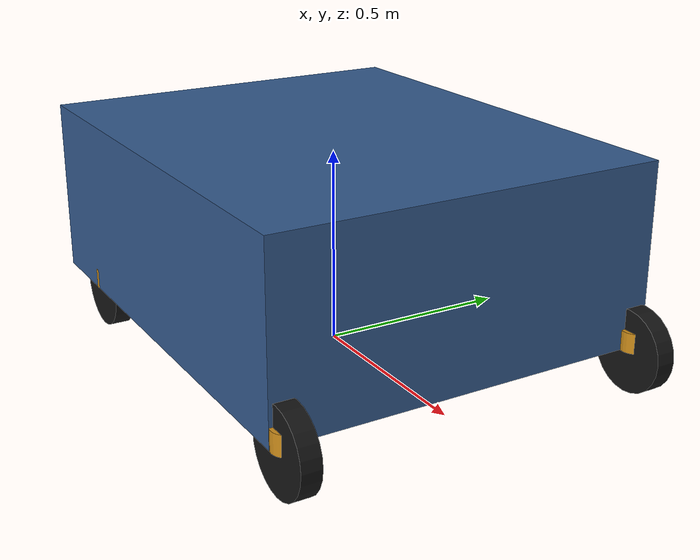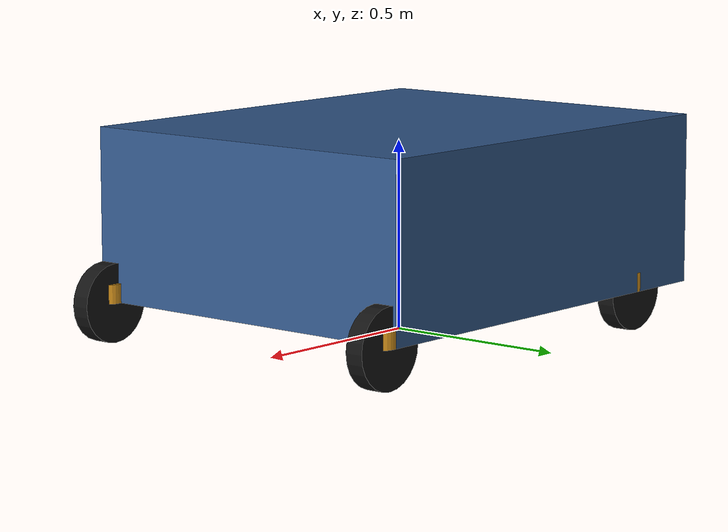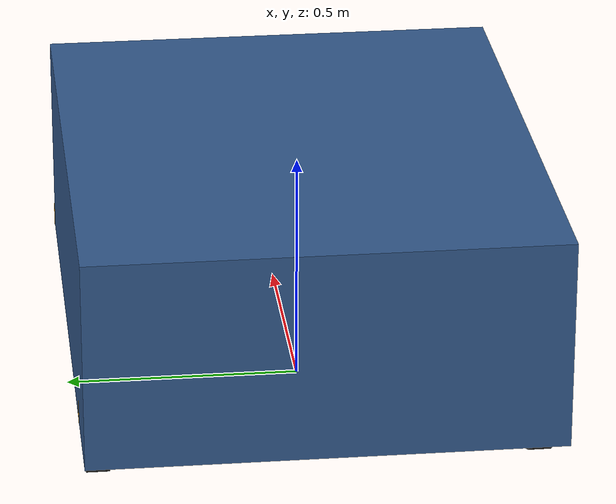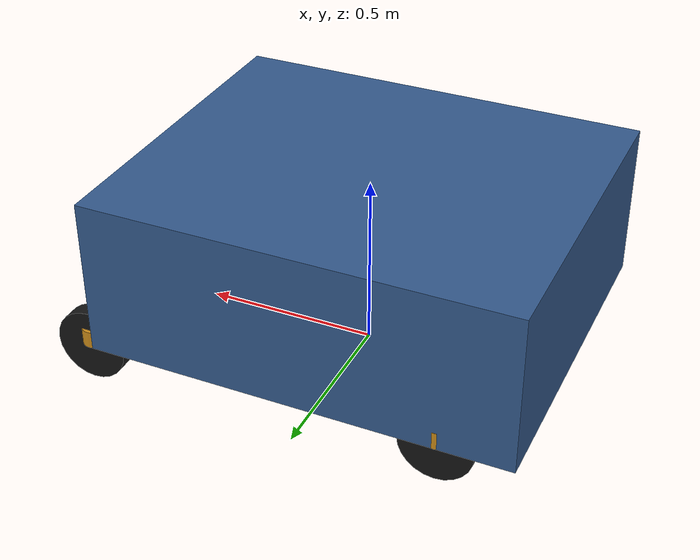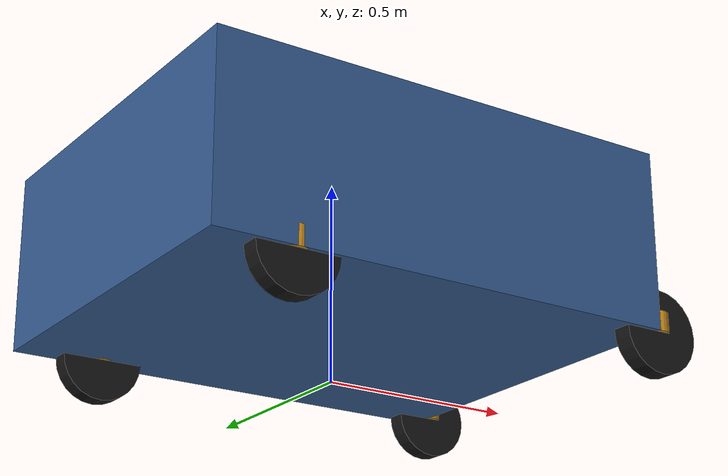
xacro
<?xml version="1.0"?>
<robot name="alm_robot" xmlns:xacro="http://www.ros.org/wiki/xacro">

  <!-- ===================== GEOMETRY (CAD 실측) ===================== -->
  <!-- 바퀴 -->
  <xacro:property name="wheel_radius" value="0.103"/>     <!-- 103 mm -->
  <xacro:property name="wheel_width"  value="0.0488"/>    <!-- 48.8 mm -->

  <!-- 바퀴 중심 위치 (base_link=차체중심 기준). 앞/뒤 x가 대칭이 아님(CAD 값). -->
  <xacro:property name="front_x" value="0.6106"/>   <!-- 앞축: FL/FR 평균 X (유지) -->
  <xacro:property name="rear_x"  value="-0.3894"/>  <!-- 뒤축: RL/RR 평균 X (CONS 휠베이스 1.000) -->
  <xacro:property name="half_track" value="0.4595"/><!-- 좌우 ±459.5 mm -> 윤거 919 mm = CONS(3) -->
  <!-- 휠베이스 = front_x - rear_x = 1.0000 m = CONS(2) -->

  <!-- 조향 기계적 한계: toe-in 90°, toe-out 45° (URDF 조인트는 시각화용으로 ±90°) -->
  <xacro:property name="steer_lower" value="-1.5708"/>
  <xacro:property name="steer_upper" value="1.5708"/>

  <!-- 차체 박스 (전장×전폭×높이) -->
  <xacro:property name="body_length" value="1.200"/>
  <xacro:property name="body_width"  value="0.9872"/>
  <xacro:property name="body_height" value="0.450"/>
  <!-- 차체 박스 중심 높이(시각화용): 바퀴축 위로 얹힘 -->
  <xacro:property name="body_cz" value="${wheel_radius + body_height/2.0}"/>

  <xacro:property name="steer_col_r" value="0.035"/>
  <xacro:property name="steer_col_h" value="0.05"/>

  <!-- ===================== MATERIALS ===================== -->
  <material name="alm_body">  <color rgba="0.20 0.35 0.55 1.0"/></material>
  <material name="alm_wheel"> <color rgba="0.08 0.08 0.08 1.0"/></material>
  <material name="alm_steer"> <color rgba="0.80 0.55 0.10 1.0"/></material>

  <!-- ===================== BASE ===================== -->
  <!-- base_link 원점 = 차체 XY 중심(=무게중심), Z=0 은 지면 접촉면. -->
  <link name="base_link">
    <visual>
      <origin xyz="0 0 ${body_cz}" rpy="0 0 0"/>
      <geometry><box size="${body_length} ${body_width} ${body_height}"/></geometry>
      <material name="alm_body"/>
    </visual>
    <collision>
      <origin xyz="0 0 ${body_cz}" rpy="0 0 0"/>
      <geometry><box size="${body_length} ${body_width} ${body_height}"/></geometry>
    </collision>
    <inertial>
      <!-- 질량 80 kg, 균일 박스 근사 관성 (Ixx=1/12 m (w²+h²) 등) -->
      <origin xyz="0 0 ${body_cz}" rpy="0 0 0"/>
      <mass value="80.0"/>
      <inertia
        ixx="7.848" ixy="0.0" ixz="0.0"
        iyy="9.950" iyz="0.0"
        izz="16.093"/>
    </inertial>
  </link>

  <!-- ===================== 4WIS CORNER MACRO ===================== -->
  <xacro:macro name="corner" params="name x y">
    <joint name="${name}_steer_joint" type="revolute">
      <parent link="base_link"/>
      <child  link="${name}_steer_link"/>
      <origin xyz="${x} ${y} ${wheel_radius}" rpy="0 0 0"/>
      <axis xyz="0 0 1"/>
      <limit lower="${steer_lower}" upper="${steer_upper}" effort="100.0" velocity="6.0"/>
    </joint>
    <link name="${name}_steer_link">
      <visual>
        <origin xyz="0 0 ${steer_col_h/2.0}" rpy="0 0 0"/>
        <geometry><cylinder radius="${steer_col_r}" length="${steer_col_h}"/></geometry>
        <material name="alm_steer"/>
      </visual>
    </link>

    <joint name="${name}_wheel_joint" type="continuous">
      <parent link="${name}_steer_link"/>
      <child  link="${name}_wheel_link"/>
      <origin xyz="0 0 0" rpy="0 0 0"/>
      <axis xyz="0 1 0"/>
    </joint>
    <link name="${name}_wheel_link">
      <visual>
        <origin xyz="0 0 0" rpy="1.5708 0 0"/>
        <geometry><cylinder radius="${wheel_radius}" length="${wheel_width}"/></geometry>
        <material name="alm_wheel"/>
      </visual>
      <collision>
        <origin xyz="0 0 0" rpy="1.5708 0 0"/>
        <geometry><cylinder radius="${wheel_radius}" length="${wheel_width}"/></geometry>
      </collision>
      <inertial>
        <mass value="2.0"/>
        <inertia ixx="0.006" ixy="0" ixz="0" iyy="0.011" iyz="0" izz="0.006"/>
      </inertial>
    </link>
  </xacro:macro>

  <!-- 이름은 물리적 앞/뒤·좌/우 기준 (ROS: x 전방, y 좌측) -->
  <xacro:corner name="front_left"  x="${front_x}" y="${half_track}"/>
  <xacro:corner name="front_right" x="${front_x}" y="${-half_track}"/>
  <xacro:corner name="rear_left"   x="${rear_x}"  y="${half_track}"/>
  <xacro:corner name="rear_right"  x="${rear_x}"  y="${-half_track}"/>

</robot>
